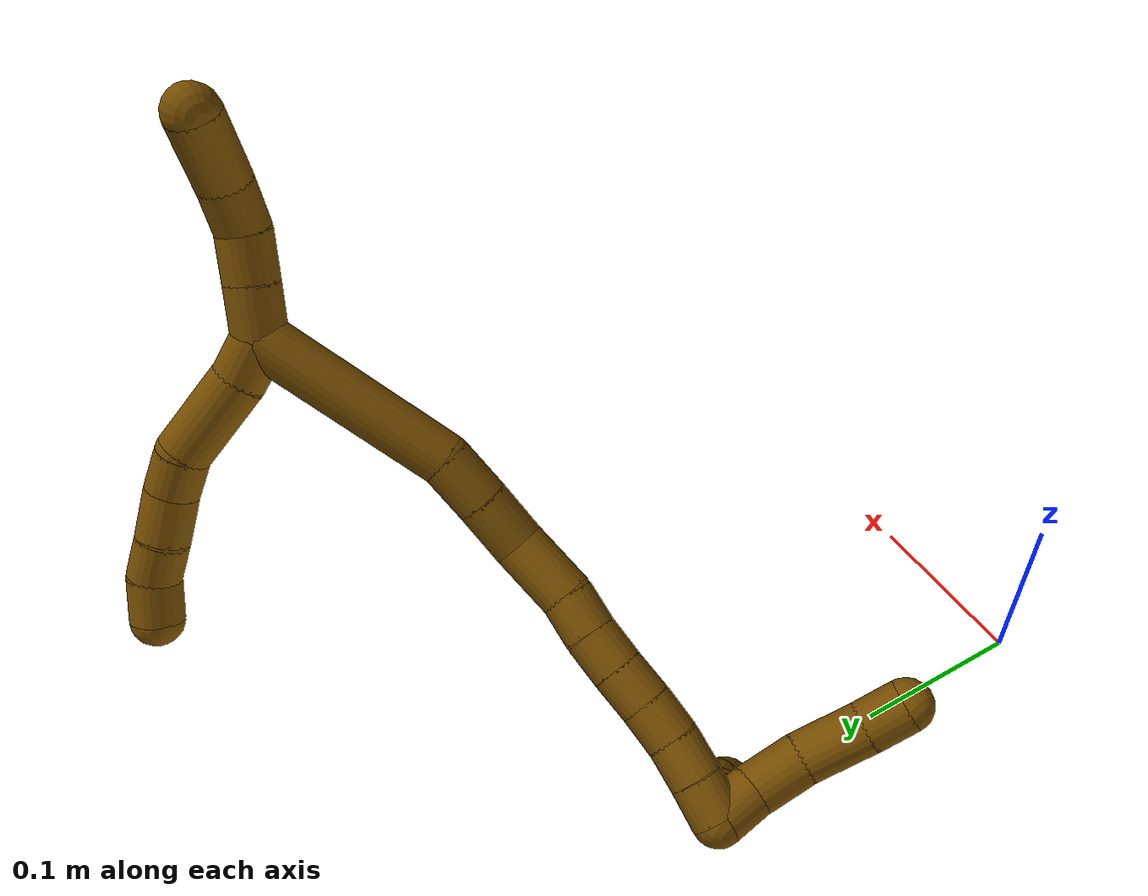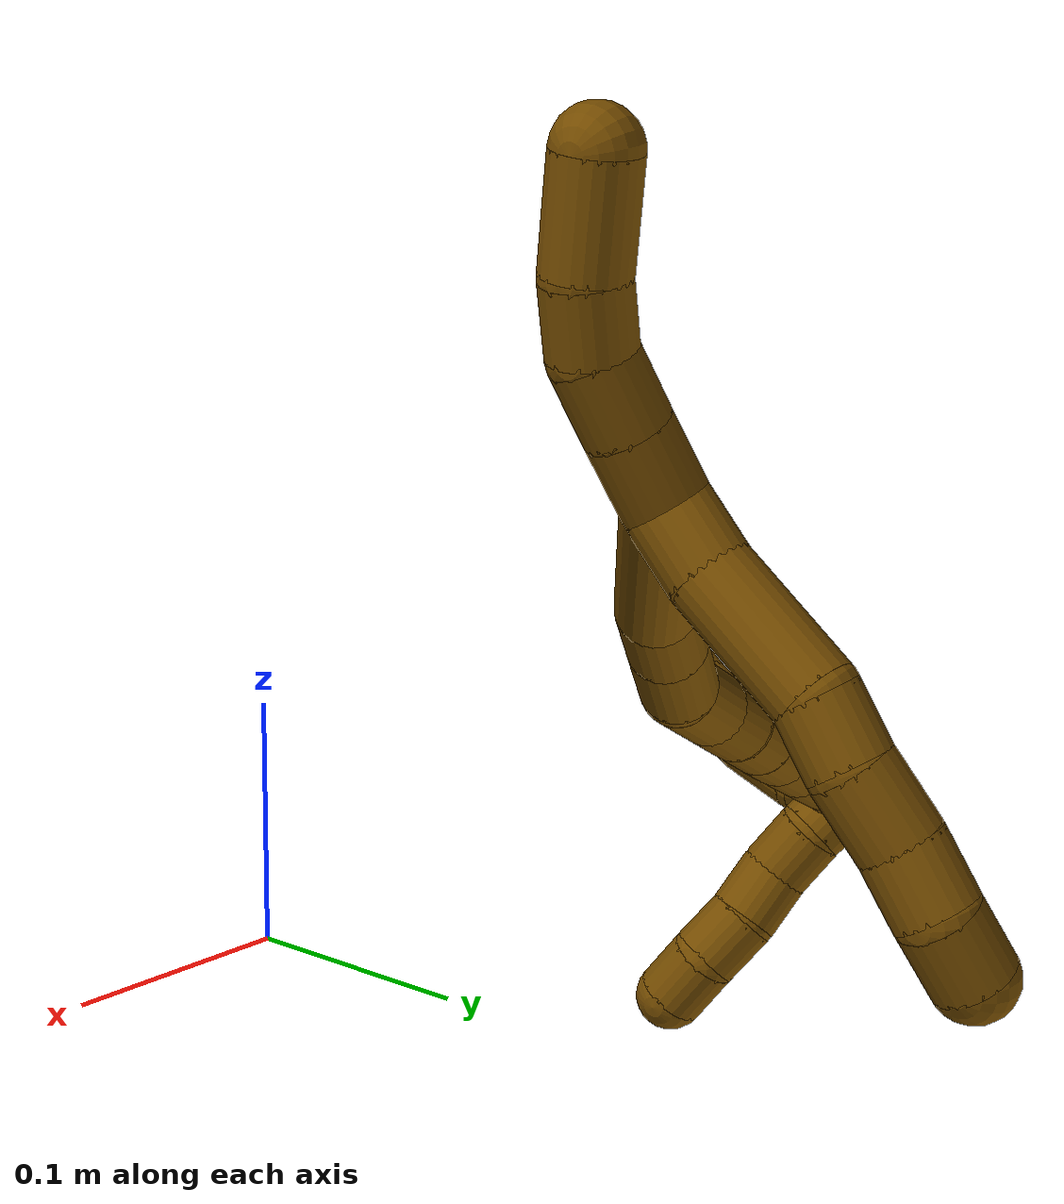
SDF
<sdf version="1.7">
 <world name="default">
  <model name="12">
   <static>0</static>
   <link name="12">
    <collision name="collision-cylinder-e_1_2_8">
     <pose>-0.006031 0.008974 0.000998 -1.46002 -0.58888 0.530022</pose>
     <geometry><cylinder><radius>0.0125</radius><length>0.021716</length></cylinder></geometry>
     <surface>
      <friction><ode><mu>1.16</mu><mu2>1.16</mu2><slip1>0</slip1><slip2>0</slip2></ode></friction>
      <contact><ode><kp>1e+06</kp><kd>1</kd><max_vel>0</max_vel><min_depth>0.001</min_depth></ode></contact>
     </surface>
    </collision>
    <visual name="visual-cylinder-e_1_2_8">
     <pose>-0.006031 0.008974 0.000998 -1.46002 -0.58888 0.530022</pose>
     <geometry><cylinder><radius>0.0125</radius><length>0.021716</length></cylinder></geometry>
     <material><ambient>0.466667 0.301961 0 1</ambient></material>
    </visual>
    <collision name="collision-cylinder-e_2_8_9">
     <pose>-0.026787 0.033162 0.00418 -1.42822 -0.76397 0.670084</pose>
     <geometry><cylinder><radius>0.0125</radius><length>0.042572</length></cylinder></geometry>
     <surface>
      <friction><ode><mu>1.16</mu><mu2>1.16</mu2><slip1>0</slip1><slip2>0</slip2></ode></friction>
      <contact><ode><kp>1e+06</kp><kd>1</kd><max_vel>0</max_vel><min_depth>0.001</min_depth></ode></contact>
     </surface>
    </collision>
    <visual name="visual-cylinder-e_2_8_9">
     <pose>-0.026787 0.033162 0.00418 -1.42822 -0.76397 0.670084</pose>
     <geometry><cylinder><radius>0.0125</radius><length>0.042572</length></cylinder></geometry>
     <material><ambient>0.466667 0.301961 0 1</ambient></material>
    </visual>
    <collision name="collision-cylinder-e_3_9_10">
     <pose>-0.045691 0.057557 0.006858 -1.51709 -0.426545 0.404852</pose>
     <geometry><cylinder><radius>0.0125</radius><length>0.020197</length></cylinder></geometry>
     <surface>
      <friction><ode><mu>1.16</mu><mu2>1.16</mu2><slip1>0</slip1><slip2>0</slip2></ode></friction>
      <contact><ode><kp>1e+06</kp><kd>1</kd><max_vel>0</max_vel><min_depth>0.001</min_depth></ode></contact>
     </surface>
    </collision>
    <visual name="visual-cylinder-e_3_9_10">
     <pose>-0.045691 0.057557 0.006858 -1.51709 -0.426545 0.404852</pose>
     <geometry><cylinder><radius>0.0125</radius><length>0.020197</length></cylinder></geometry>
     <material><ambient>0.466667 0.301961 0 1</ambient></material>
    </visual>
    <collision name="collision-cylinder-e_4_10_11">
     <pose>-0.054861 0.077448 0.005634 -1.72978 -0.431375 0.503155</pose>
     <geometry><cylinder><radius>0.0125</radius><length>0.023881</length></cylinder></geometry>
     <surface>
      <friction><ode><mu>1.16</mu><mu2>1.16</mu2><slip1>0</slip1><slip2>0</slip2></ode></friction>
      <contact><ode><kp>1e+06</kp><kd>1</kd><max_vel>0</max_vel><min_depth>0.001</min_depth></ode></contact>
     </surface>
    </collision>
    <visual name="visual-cylinder-e_4_10_11">
     <pose>-0.054861 0.077448 0.005634 -1.72978 -0.431375 0.503155</pose>
     <geometry><cylinder><radius>0.0125</radius><length>0.023881</length></cylinder></geometry>
     <material><ambient>0.466667 0.301961 0 1</ambient></material>
    </visual>
    <collision name="collision-cylinder-e_5_11_12">
     <pose>-0.063868 0.097487 0.003714 -1.59251 -0.406176 0.414839</pose>
     <geometry><cylinder><radius>0.0125</radius><length>0.020317</length></cylinder></geometry>
     <surface>
      <friction><ode><mu>1.16</mu><mu2>1.16</mu2><slip1>0</slip1><slip2>0</slip2></ode></friction>
      <contact><ode><kp>1e+06</kp><kd>1</kd><max_vel>0</max_vel><min_depth>0.001</min_depth></ode></contact>
     </surface>
    </collision>
    <visual name="visual-cylinder-e_5_11_12">
     <pose>-0.063868 0.097487 0.003714 -1.59251 -0.406176 0.414839</pose>
     <geometry><cylinder><radius>0.0125</radius><length>0.020317</length></cylinder></geometry>
     <material><ambient>0.466667 0.301961 0 1</ambient></material>
    </visual>
    <collision name="collision-cylinder-e_6_12_6">
     <pose>-0.070344 0.116681 0.000312 -1.88446 -0.233138 0.319437</pose>
     <geometry><cylinder><radius>0.0125</radius><length>0.021317</length></cylinder></geometry>
     <surface>
      <friction><ode><mu>1.16</mu><mu2>1.16</mu2><slip1>0</slip1><slip2>0</slip2></ode></friction>
      <contact><ode><kp>1e+06</kp><kd>1</kd><max_vel>0</max_vel><min_depth>0.001</min_depth></ode></contact>
     </surface>
    </collision>
    <visual name="visual-cylinder-e_6_12_6">
     <pose>-0.070344 0.116681 0.000312 -1.88446 -0.233138 0.319437</pose>
     <geometry><cylinder><radius>0.0125</radius><length>0.021317</length></cylinder></geometry>
     <material><ambient>0.466667 0.301961 0 1</ambient></material>
    </visual>
    <collision name="collision-cylinder-e_1_2_13">
     <pose>0.001666 -0.011207 0.003952 1.23175 0.139328 0.098683</pose>
     <geometry><cylinder><radius>0.0125</radius><length>0.023999</length></cylinder></geometry>
     <surface>
      <friction><ode><mu>1.16</mu><mu2>1.16</mu2><slip1>0</slip1><slip2>0</slip2></ode></friction>
      <contact><ode><kp>1e+06</kp><kd>1</kd><max_vel>0</max_vel><min_depth>0.001</min_depth></ode></contact>
     </surface>
    </collision>
    <visual name="visual-cylinder-e_1_2_13">
     <pose>0.001666 -0.011207 0.003952 1.23175 0.139328 0.098683</pose>
     <geometry><cylinder><radius>0.0125</radius><length>0.023999</length></cylinder></geometry>
     <material><ambient>0.466667 0.301961 0 1</ambient></material>
    </visual>
    <collision name="collision-cylinder-e_2_13_14">
     <pose>0.00478 -0.032964 0.011517 1.24087 0.12903 0.092264</pose>
     <geometry><cylinder><radius>0.0125</radius><length>0.02249</length></cylinder></geometry>
     <surface>
      <friction><ode><mu>1.16</mu><mu2>1.16</mu2><slip1>0</slip1><slip2>0</slip2></ode></friction>
      <contact><ode><kp>1e+06</kp><kd>1</kd><max_vel>0</max_vel><min_depth>0.001</min_depth></ode></contact>
     </surface>
    </collision>
    <visual name="visual-cylinder-e_2_13_14">
     <pose>0.00478 -0.032964 0.011517 1.24087 0.12903 0.092264</pose>
     <geometry><cylinder><radius>0.0125</radius><length>0.02249</length></cylinder></geometry>
     <material><ambient>0.466667 0.301961 0 1</ambient></material>
    </visual>
    <collision name="collision-cylinder-e_3_14_15">
     <pose>0.004575 -0.053805 0.016663 1.42295 -0.15739 -0.135757</pose>
     <geometry><cylinder><radius>0.0125</radius><length>0.021071</length></cylinder></geometry>
     <surface>
      <friction><ode><mu>1.16</mu><mu2>1.16</mu2><slip1>0</slip1><slip2>0</slip2></ode></friction>
      <contact><ode><kp>1e+06</kp><kd>1</kd><max_vel>0</max_vel><min_depth>0.001</min_depth></ode></contact>
     </surface>
    </collision>
    <visual name="visual-cylinder-e_3_14_15">
     <pose>0.004575 -0.053805 0.016663 1.42295 -0.15739 -0.135757</pose>
     <geometry><cylinder><radius>0.0125</radius><length>0.021071</length></cylinder></geometry>
     <material><ambient>0.466667 0.301961 0 1</ambient></material>
    </visual>
    <collision name="collision-cylinder-e_4_15_5">
     <pose>-0.001195 -0.079782 0.017858 1.59228 -0.25675 -0.262264</pose>
     <geometry><cylinder><radius>0.0125</radius><length>0.03244</length></cylinder></geometry>
     <surface>
      <friction><ode><mu>1.16</mu><mu2>1.16</mu2><slip1>0</slip1><slip2>0</slip2></ode></friction>
      <contact><ode><kp>1e+06</kp><kd>1</kd><max_vel>0</max_vel><min_depth>0.001</min_depth></ode></contact>
     </surface>
    </collision>
    <visual name="visual-cylinder-e_4_15_5">
     <pose>-0.001195 -0.079782 0.017858 1.59228 -0.25675 -0.262264</pose>
     <geometry><cylinder><radius>0.0125</radius><length>0.03244</length></cylinder></geometry>
     <material><ambient>0.466667 0.301961 0 1</ambient></material>
    </visual>
    <collision name="collision-cylinder-e_1_2_16">
     <pose>0.025702 0.024378 -0.032164 -2.49305 0.567071 -1.42841</pose>
     <geometry><cylinder><radius>0.0125</radius><length>0.095695</length></cylinder></geometry>
     <surface>
      <friction><ode><mu>1.16</mu><mu2>1.16</mu2><slip1>0</slip1><slip2>0</slip2></ode></friction>
      <contact><ode><kp>1e+06</kp><kd>1</kd><max_vel>0</max_vel><min_depth>0.001</min_depth></ode></contact>
     </surface>
    </collision>
    <visual name="visual-cylinder-e_1_2_16">
     <pose>0.025702 0.024378 -0.032164 -2.49305 0.567071 -1.42841</pose>
     <geometry><cylinder><radius>0.0125</radius><length>0.095695</length></cylinder></geometry>
     <material><ambient>0.466667 0.301961 0 1</ambient></material>
    </visual>
    <collision name="collision-cylinder-e_2_16_17">
     <pose>0.055756 0.057408 -0.072272 -2.31349 0.354784 -0.77468</pose>
     <geometry><cylinder><radius>0.0125</radius><length>0.025054</length></cylinder></geometry>
     <surface>
      <friction><ode><mu>1.16</mu><mu2>1.16</mu2><slip1>0</slip1><slip2>0</slip2></ode></friction>
      <contact><ode><kp>1e+06</kp><kd>1</kd><max_vel>0</max_vel><min_depth>0.001</min_depth></ode></contact>
     </surface>
    </collision>
    <visual name="visual-cylinder-e_2_16_17">
     <pose>0.055756 0.057408 -0.072272 -2.31349 0.354784 -0.77468</pose>
     <geometry><cylinder><radius>0.0125</radius><length>0.025054</length></cylinder></geometry>
     <material><ambient>0.466667 0.301961 0 1</ambient></material>
    </visual>
    <collision name="collision-cylinder-e_3_17_18">
     <pose>0.064497 0.075493 -0.088439 -2.28786 0.337434 -0.716665</pose>
     <geometry><cylinder><radius>0.0125</radius><length>0.026519</length></cylinder></geometry>
     <surface>
      <friction><ode><mu>1.16</mu><mu2>1.16</mu2><slip1>0</slip1><slip2>0</slip2></ode></friction>
      <contact><ode><kp>1e+06</kp><kd>1</kd><max_vel>0</max_vel><min_depth>0.001</min_depth></ode></contact>
     </surface>
    </collision>
    <visual name="visual-cylinder-e_3_17_18">
     <pose>0.064497 0.075493 -0.088439 -2.28786 0.337434 -0.716665</pose>
     <geometry><cylinder><radius>0.0125</radius><length>0.026519</length></cylinder></geometry>
     <material><ambient>0.466667 0.301961 0 1</ambient></material>
    </visual>
    <collision name="collision-cylinder-e_4_18_19">
     <pose>0.07269 0.092862 -0.110436 -2.61879 0.234819 -0.830528</pose>
     <geometry><cylinder><radius>0.0125</radius><length>0.032694</length></cylinder></geometry>
     <surface>
      <friction><ode><mu>1.16</mu><mu2>1.16</mu2><slip1>0</slip1><slip2>0</slip2></ode></friction>
      <contact><ode><kp>1e+06</kp><kd>1</kd><max_vel>0</max_vel><min_depth>0.001</min_depth></ode></contact>
     </surface>
    </collision>
    <visual name="visual-cylinder-e_4_18_19">
     <pose>0.07269 0.092862 -0.110436 -2.61879 0.234819 -0.830528</pose>
     <geometry><cylinder><radius>0.0125</radius><length>0.032694</length></cylinder></geometry>
     <material><ambient>0.466667 0.301961 0 1</ambient></material>
    </visual>
    <collision name="collision-cylinder-e_5_19_20">
     <pose>0.077075 0.106414 -0.132472 -2.54474 0.058143 -0.188506</pose>
     <geometry><cylinder><radius>0.0125</radius><length>0.02001</length></cylinder></geometry>
     <surface>
      <friction><ode><mu>1.16</mu><mu2>1.16</mu2><slip1>0</slip1><slip2>0</slip2></ode></friction>
      <contact><ode><kp>1e+06</kp><kd>1</kd><max_vel>0</max_vel><min_depth>0.001</min_depth></ode></contact>
     </surface>
    </collision>
    <visual name="visual-cylinder-e_5_19_20">
     <pose>0.077075 0.106414 -0.132472 -2.54474 0.058143 -0.188506</pose>
     <geometry><cylinder><radius>0.0125</radius><length>0.02001</length></cylinder></geometry>
     <material><ambient>0.466667 0.301961 0 1</ambient></material>
    </visual>
    <collision name="collision-cylinder-e_6_20_21">
     <pose>0.079157 0.117308 -0.149094 -2.57825 0.150589 -0.510045</pose>
     <geometry><cylinder><radius>0.0125</radius><length>0.020004</length></cylinder></geometry>
     <surface>
      <friction><ode><mu>1.16</mu><mu2>1.16</mu2><slip1>0</slip1><slip2>0</slip2></ode></friction>
      <contact><ode><kp>1e+06</kp><kd>1</kd><max_vel>0</max_vel><min_depth>0.001</min_depth></ode></contact>
     </surface>
    </collision>
    <visual name="visual-cylinder-e_6_20_21">
     <pose>0.079157 0.117308 -0.149094 -2.57825 0.150589 -0.510045</pose>
     <geometry><cylinder><radius>0.0125</radius><length>0.020004</length></cylinder></geometry>
     <material><ambient>0.466667 0.301961 0 1</ambient></material>
    </visual>
    <collision name="collision-cylinder-e_7_21_22">
     <pose>0.082463 0.127636 -0.165908 -2.60331 0.181355 -0.636851</pose>
     <geometry><cylinder><radius>0.0125</radius><length>0.020017</length></cylinder></geometry>
     <surface>
      <friction><ode><mu>1.16</mu><mu2>1.16</mu2><slip1>0</slip1><slip2>0</slip2></ode></friction>
      <contact><ode><kp>1e+06</kp><kd>1</kd><max_vel>0</max_vel><min_depth>0.001</min_depth></ode></contact>
     </surface>
    </collision>
    <visual name="visual-cylinder-e_7_21_22">
     <pose>0.082463 0.127636 -0.165908 -2.60331 0.181355 -0.636851</pose>
     <geometry><cylinder><radius>0.0125</radius><length>0.020017</length></cylinder></geometry>
     <material><ambient>0.466667 0.301961 0 1</ambient></material>
    </visual>
    <collision name="collision-cylinder-e_8_22_23">
     <pose>0.085582 0.137865 -0.182814 -2.59172 0.131723 -0.459392</pose>
     <geometry><cylinder><radius>0.0125</radius><length>0.020005</length></cylinder></geometry>
     <surface>
      <friction><ode><mu>1.16</mu><mu2>1.16</mu2><slip1>0</slip1><slip2>0</slip2></ode></friction>
      <contact><ode><kp>1e+06</kp><kd>1</kd><max_vel>0</max_vel><min_depth>0.001</min_depth></ode></contact>
     </surface>
    </collision>
    <visual name="visual-cylinder-e_8_22_23">
     <pose>0.085582 0.137865 -0.182814 -2.59172 0.131723 -0.459392</pose>
     <geometry><cylinder><radius>0.0125</radius><length>0.020005</length></cylinder></geometry>
     <material><ambient>0.466667 0.301961 0 1</ambient></material>
    </visual>
    <collision name="collision-cylinder-e_9_23_24">
     <pose>0.087106 0.148511 -0.19964 -2.56334 0.021002 -0.070578</pose>
     <geometry><cylinder><radius>0.0125</radius><length>0.02</length></cylinder></geometry>
     <surface>
      <friction><ode><mu>1.16</mu><mu2>1.16</mu2><slip1>0</slip1><slip2>0</slip2></ode></friction>
      <contact><ode><kp>1e+06</kp><kd>1</kd><max_vel>0</max_vel><min_depth>0.001</min_depth></ode></contact>
     </surface>
    </collision>
    <visual name="visual-cylinder-e_9_23_24">
     <pose>0.087106 0.148511 -0.19964 -2.56334 0.021002 -0.070578</pose>
     <geometry><cylinder><radius>0.0125</radius><length>0.02</length></cylinder></geometry>
     <material><ambient>0.466667 0.301961 0 1</ambient></material>
    </visual>
    <collision name="collision-cylinder-e_10_24_1">
     <pose>0.087401 0.159899 -0.216069 -2.50757 0.008589 -0.026179</pose>
     <geometry><cylinder><radius>0.0125</radius><length>0.020001</length></cylinder></geometry>
     <surface>
      <friction><ode><mu>1.16</mu><mu2>1.16</mu2><slip1>0</slip1><slip2>0</slip2></ode></friction>
      <contact><ode><kp>1e+06</kp><kd>1</kd><max_vel>0</max_vel><min_depth>0.001</min_depth></ode></contact>
     </surface>
    </collision>
    <visual name="visual-cylinder-e_10_24_1">
     <pose>0.087401 0.159899 -0.216069 -2.50757 0.008589 -0.026179</pose>
     <geometry><cylinder><radius>0.0125</radius><length>0.020001</length></cylinder></geometry>
     <material><ambient>0.466667 0.301961 0 1</ambient></material>
    </visual>
    <collision name="collision-cylinder-e_1_1_25">
     <pose>0.093091 0.171383 -0.217987 -0.735959 0.594784 -0.235231</pose>
     <geometry><cylinder><radius>0.0125</radius><length>0.02</length></cylinder></geometry>
     <surface>
      <friction><ode><mu>1.16</mu><mu2>1.16</mu2><slip1>0</slip1><slip2>0</slip2></ode></friction>
      <contact><ode><kp>1e+06</kp><kd>1</kd><max_vel>0</max_vel><min_depth>0.001</min_depth></ode></contact>
     </surface>
    </collision>
    <visual name="visual-cylinder-e_1_1_25">
     <pose>0.093091 0.171383 -0.217987 -0.735959 0.594784 -0.235231</pose>
     <geometry><cylinder><radius>0.0125</radius><length>0.02</length></cylinder></geometry>
     <material><ambient>0.466667 0.301961 0 1</ambient></material>
    </visual>
    <collision name="collision-cylinder-e_2_25_26">
     <pose>0.104895 0.183766 -0.207974 -1.0544 0.668869 -0.399199</pose>
     <geometry><cylinder><radius>0.0125</radius><length>0.02</length></cylinder></geometry>
     <surface>
      <friction><ode><mu>1.16</mu><mu2>1.16</mu2><slip1>0</slip1><slip2>0</slip2></ode></friction>
      <contact><ode><kp>1e+06</kp><kd>1</kd><max_vel>0</max_vel><min_depth>0.001</min_depth></ode></contact>
     </surface>
    </collision>
    <visual name="visual-cylinder-e_2_25_26">
     <pose>0.104895 0.183766 -0.207974 -1.0544 0.668869 -0.399199</pose>
     <geometry><cylinder><radius>0.0125</radius><length>0.02</length></cylinder></geometry>
     <material><ambient>0.466667 0.301961 0 1</ambient></material>
    </visual>
    <collision name="collision-cylinder-e_3_26_27">
     <pose>0.115092 0.197279 -0.197835 -0.818221 0.411038 -0.180278</pose>
     <geometry><cylinder><radius>0.0125</radius><length>0.02</length></cylinder></geometry>
     <surface>
      <friction><ode><mu>1.16</mu><mu2>1.16</mu2><slip1>0</slip1><slip2>0</slip2></ode></friction>
      <contact><ode><kp>1e+06</kp><kd>1</kd><max_vel>0</max_vel><min_depth>0.001</min_depth></ode></contact>
     </surface>
    </collision>
    <visual name="visual-cylinder-e_3_26_27">
     <pose>0.115092 0.197279 -0.197835 -0.818221 0.411038 -0.180278</pose>
     <geometry><cylinder><radius>0.0125</radius><length>0.02</length></cylinder></geometry>
     <material><ambient>0.466667 0.301961 0 1</ambient></material>
    </visual>
    <collision name="collision-cylinder-e_4_27_28">
     <pose>0.124703 0.210098 -0.186009 -0.833921 0.596288 -0.270566</pose>
     <geometry><cylinder><radius>0.0125</radius><length>0.02</length></cylinder></geometry>
     <surface>
      <friction><ode><mu>1.16</mu><mu2>1.16</mu2><slip1>0</slip1><slip2>0</slip2></ode></friction>
      <contact><ode><kp>1e+06</kp><kd>1</kd><max_vel>0</max_vel><min_depth>0.001</min_depth></ode></contact>
     </surface>
    </collision>
    <visual name="visual-cylinder-e_4_27_28">
     <pose>0.124703 0.210098 -0.186009 -0.833921 0.596288 -0.270566</pose>
     <geometry><cylinder><radius>0.0125</radius><length>0.02</length></cylinder></geometry>
     <material><ambient>0.466667 0.301961 0 1</ambient></material>
    </visual>
    <collision name="collision-cylinder-e_5_28_4">
     <pose>0.136988 0.223249 -0.177958 -1.23 0.730103 -0.527363</pose>
     <geometry><cylinder><radius>0.0125</radius><length>0.02</length></cylinder></geometry>
     <surface>
      <friction><ode><mu>1.16</mu><mu2>1.16</mu2><slip1>0</slip1><slip2>0</slip2></ode></friction>
      <contact><ode><kp>1e+06</kp><kd>1</kd><max_vel>0</max_vel><min_depth>0.001</min_depth></ode></contact>
     </surface>
    </collision>
    <visual name="visual-cylinder-e_5_28_4">
     <pose>0.136988 0.223249 -0.177958 -1.23 0.730103 -0.527363</pose>
     <geometry><cylinder><radius>0.0125</radius><length>0.02</length></cylinder></geometry>
     <material><ambient>0.466667 0.301961 0 1</ambient></material>
    </visual>
    <collision name="collision-cylinder-e_1_1_29">
     <pose>0.097517 0.163527 -0.223904 1.47446 1.34475 1.25186</pose>
     <geometry><cylinder><radius>0.0125</radius><length>0.020583</length></cylinder></geometry>
     <surface>
      <friction><ode><mu>1.16</mu><mu2>1.16</mu2><slip1>0</slip1><slip2>0</slip2></ode></friction>
      <contact><ode><kp>1e+06</kp><kd>1</kd><max_vel>0</max_vel><min_depth>0.001</min_depth></ode></contact>
     </surface>
    </collision>
    <visual name="visual-cylinder-e_1_1_29">
     <pose>0.097517 0.163527 -0.223904 1.47446 1.34475 1.25186</pose>
     <geometry><cylinder><radius>0.0125</radius><length>0.020583</length></cylinder></geometry>
     <material><ambient>0.466667 0.301961 0 1</ambient></material>
    </visual>
    <collision name="collision-cylinder-e_2_29_30">
     <pose>0.119417 0.155766 -0.226463 2.04142 1.09394 1.56379</pose>
     <geometry><cylinder><radius>0.0125</radius><length>0.02672</length></cylinder></geometry>
     <surface>
      <friction><ode><mu>1.16</mu><mu2>1.16</mu2><slip1>0</slip1><slip2>0</slip2></ode></friction>
      <contact><ode><kp>1e+06</kp><kd>1</kd><max_vel>0</max_vel><min_depth>0.001</min_depth></ode></contact>
     </surface>
    </collision>
    <visual name="visual-cylinder-e_2_29_30">
     <pose>0.119417 0.155766 -0.226463 2.04142 1.09394 1.56379</pose>
     <geometry><cylinder><radius>0.0125</radius><length>0.02672</length></cylinder></geometry>
     <material><ambient>0.466667 0.301961 0 1</ambient></material>
    </visual>
    <collision name="collision-cylinder-e_3_30_31">
     <pose>0.144126 0.142944 -0.235121 2.24494 0.938027 1.62289</pose>
     <geometry><cylinder><radius>0.0125</radius><length>0.031846</length></cylinder></geometry>
     <surface>
      <friction><ode><mu>1.16</mu><mu2>1.16</mu2><slip1>0</slip1><slip2>0</slip2></ode></friction>
      <contact><ode><kp>1e+06</kp><kd>1</kd><max_vel>0</max_vel><min_depth>0.001</min_depth></ode></contact>
     </surface>
    </collision>
    <visual name="visual-cylinder-e_3_30_31">
     <pose>0.144126 0.142944 -0.235121 2.24494 0.938027 1.62289</pose>
     <geometry><cylinder><radius>0.0125</radius><length>0.031846</length></cylinder></geometry>
     <material><ambient>0.466667 0.301961 0 1</ambient></material>
    </visual>
    <collision name="collision-cylinder-e_4_31_3">
     <pose>0.164912 0.129995 -0.244779 2.16509 0.866581 1.43309</pose>
     <geometry><cylinder><radius>0.0125</radius><length>0.020851</length></cylinder></geometry>
     <surface>
      <friction><ode><mu>1.16</mu><mu2>1.16</mu2><slip1>0</slip1><slip2>0</slip2></ode></friction>
      <contact><ode><kp>1e+06</kp><kd>1</kd><max_vel>0</max_vel><min_depth>0.001</min_depth></ode></contact>
     </surface>
    </collision>
    <visual name="visual-cylinder-e_4_31_3">
     <pose>0.164912 0.129995 -0.244779 2.16509 0.866581 1.43309</pose>
     <geometry><cylinder><radius>0.0125</radius><length>0.020851</length></cylinder></geometry>
     <material><ambient>0.466667 0.301961 0 1</ambient></material>
    </visual>
    <collision name="collision-sphere-3">
     <pose>0.172857 0.124403 -0.248558 0 -0 0</pose>
     <geometry><sphere><radius>0.0125</radius></sphere></geometry>
     <surface>
      <friction><ode><mu>1.16</mu><mu2>1.16</mu2><slip1>0</slip1><slip2>0</slip2></ode></friction>
      <contact><ode><kp>1e+06</kp><kd>1</kd><max_vel>0</max_vel><min_depth>0.001</min_depth></ode></contact>
     </surface>
    </collision>
    <visual name="visual-sphere-3">
     <pose>0.172857 0.124403 -0.248558 0 -0 0</pose>
     <geometry><sphere><radius>0.0125</radius></sphere></geometry>
     <material><ambient>0.466667 0.301961 0 1</ambient></material>
    </visual>
    <collision name="collision-sphere-31">
     <pose>0.156967 0.135587 -0.240999 0 -0 0</pose>
     <geometry><sphere><radius>0.0125</radius></sphere></geometry>
     <surface>
      <friction><ode><mu>1.16</mu><mu2>1.16</mu2><slip1>0</slip1><slip2>0</slip2></ode></friction>
      <contact><ode><kp>1e+06</kp><kd>1</kd><max_vel>0</max_vel><min_depth>0.001</min_depth></ode></contact>
     </surface>
    </collision>
    <visual name="visual-sphere-31">
     <pose>0.156967 0.135587 -0.240999 0 -0 0</pose>
     <geometry><sphere><radius>0.0125</radius></sphere></geometry>
     <material><ambient>0.466667 0.301961 0 1</ambient></material>
    </visual>
    <collision name="collision-sphere-30">
     <pose>0.131286 0.150301 -0.229243 0 -0 0</pose>
     <geometry><sphere><radius>0.0125</radius></sphere></geometry>
     <surface>
      <friction><ode><mu>1.16</mu><mu2>1.16</mu2><slip1>0</slip1><slip2>0</slip2></ode></friction>
      <contact><ode><kp>1e+06</kp><kd>1</kd><max_vel>0</max_vel><min_depth>0.001</min_depth></ode></contact>
     </surface>
    </collision>
    <visual name="visual-sphere-30">
     <pose>0.131286 0.150301 -0.229243 0 -0 0</pose>
     <geometry><sphere><radius>0.0125</radius></sphere></geometry>
     <material><ambient>0.466667 0.301961 0 1</ambient></material>
    </visual>
    <collision name="collision-sphere-29">
     <pose>0.107547 0.161231 -0.223682 0 -0 0</pose>
     <geometry><sphere><radius>0.0125</radius></sphere></geometry>
     <surface>
      <friction><ode><mu>1.16</mu><mu2>1.16</mu2><slip1>0</slip1><slip2>0</slip2></ode></friction>
      <contact><ode><kp>1e+06</kp><kd>1</kd><max_vel>0</max_vel><min_depth>0.001</min_depth></ode></contact>
     </surface>
    </collision>
    <visual name="visual-sphere-29">
     <pose>0.107547 0.161231 -0.223682 0 -0 0</pose>
     <geometry><sphere><radius>0.0125</radius></sphere></geometry>
     <material><ambient>0.466667 0.301961 0 1</ambient></material>
    </visual>
    <collision name="collision-sphere-4">
     <pose>0.143658 0.230271 -0.175468 0 -0 0</pose>
     <geometry><sphere><radius>0.0125</radius></sphere></geometry>
     <surface>
      <friction><ode><mu>1.16</mu><mu2>1.16</mu2><slip1>0</slip1><slip2>0</slip2></ode></friction>
      <contact><ode><kp>1e+06</kp><kd>1</kd><max_vel>0</max_vel><min_depth>0.001</min_depth></ode></contact>
     </surface>
    </collision>
    <visual name="visual-sphere-4">
     <pose>0.143658 0.230271 -0.175468 0 -0 0</pose>
     <geometry><sphere><radius>0.0125</radius></sphere></geometry>
     <material><ambient>0.466667 0.301961 0 1</ambient></material>
    </visual>
    <collision name="collision-sphere-28">
     <pose>0.130319 0.216226 -0.180449 0 -0 0</pose>
     <geometry><sphere><radius>0.0125</radius></sphere></geometry>
     <surface>
      <friction><ode><mu>1.16</mu><mu2>1.16</mu2><slip1>0</slip1><slip2>0</slip2></ode></friction>
      <contact><ode><kp>1e+06</kp><kd>1</kd><max_vel>0</max_vel><min_depth>0.001</min_depth></ode></contact>
     </surface>
    </collision>
    <visual name="visual-sphere-28">
     <pose>0.130319 0.216226 -0.180449 0 -0 0</pose>
     <geometry><sphere><radius>0.0125</radius></sphere></geometry>
     <material><ambient>0.466667 0.301961 0 1</ambient></material>
    </visual>
    <collision name="collision-sphere-27">
     <pose>0.119087 0.203971 -0.191569 0 -0 0</pose>
     <geometry><sphere><radius>0.0125</radius></sphere></geometry>
     <surface>
      <friction><ode><mu>1.16</mu><mu2>1.16</mu2><slip1>0</slip1><slip2>0</slip2></ode></friction>
      <contact><ode><kp>1e+06</kp><kd>1</kd><max_vel>0</max_vel><min_depth>0.001</min_depth></ode></contact>
     </surface>
    </collision>
    <visual name="visual-sphere-27">
     <pose>0.119087 0.203971 -0.191569 0 -0 0</pose>
     <geometry><sphere><radius>0.0125</radius></sphere></geometry>
     <material><ambient>0.466667 0.301961 0 1</ambient></material>
    </visual>
    <collision name="collision-sphere-26">
     <pose>0.111096 0.190588 -0.204101 0 -0 0</pose>
     <geometry><sphere><radius>0.0125</radius></sphere></geometry>
     <surface>
      <friction><ode><mu>1.16</mu><mu2>1.16</mu2><slip1>0</slip1><slip2>0</slip2></ode></friction>
      <contact><ode><kp>1e+06</kp><kd>1</kd><max_vel>0</max_vel><min_depth>0.001</min_depth></ode></contact>
     </surface>
    </collision>
    <visual name="visual-sphere-26">
     <pose>0.111096 0.190588 -0.204101 0 -0 0</pose>
     <geometry><sphere><radius>0.0125</radius></sphere></geometry>
     <material><ambient>0.466667 0.301961 0 1</ambient></material>
    </visual>
    <collision name="collision-sphere-25">
     <pose>0.098694 0.176944 -0.211848 0 -0 0</pose>
     <geometry><sphere><radius>0.0125</radius></sphere></geometry>
     <surface>
      <friction><ode><mu>1.16</mu><mu2>1.16</mu2><slip1>0</slip1><slip2>0</slip2></ode></friction>
      <contact><ode><kp>1e+06</kp><kd>1</kd><max_vel>0</max_vel><min_depth>0.001</min_depth></ode></contact>
     </surface>
    </collision>
    <visual name="visual-sphere-25">
     <pose>0.098694 0.176944 -0.211848 0 -0 0</pose>
     <geometry><sphere><radius>0.0125</radius></sphere></geometry>
     <material><ambient>0.466667 0.301961 0 1</ambient></material>
    </visual>
    <collision name="collision-sphere-1">
     <pose>0.087487 0.165823 -0.224126 0 -0 0</pose>
     <geometry><sphere><radius>0.0125</radius></sphere></geometry>
     <surface>
      <friction><ode><mu>1.16</mu><mu2>1.16</mu2><slip1>0</slip1><slip2>0</slip2></ode></friction>
      <contact><ode><kp>1e+06</kp><kd>1</kd><max_vel>0</max_vel><min_depth>0.001</min_depth></ode></contact>
     </surface>
    </collision>
    <visual name="visual-sphere-1">
     <pose>0.087487 0.165823 -0.224126 0 -0 0</pose>
     <geometry><sphere><radius>0.0125</radius></sphere></geometry>
     <material><ambient>0.466667 0.301961 0 1</ambient></material>
    </visual>
    <collision name="collision-sphere-24">
     <pose>0.087316 0.153975 -0.208013 0 -0 0</pose>
     <geometry><sphere><radius>0.0125</radius></sphere></geometry>
     <surface>
      <friction><ode><mu>1.16</mu><mu2>1.16</mu2><slip1>0</slip1><slip2>0</slip2></ode></friction>
      <contact><ode><kp>1e+06</kp><kd>1</kd><max_vel>0</max_vel><min_depth>0.001</min_depth></ode></contact>
     </surface>
    </collision>
    <visual name="visual-sphere-24">
     <pose>0.087316 0.153975 -0.208013 0 -0 0</pose>
     <geometry><sphere><radius>0.0125</radius></sphere></geometry>
     <material><ambient>0.466667 0.301961 0 1</ambient></material>
    </visual>
    <collision name="collision-sphere-23">
     <pose>0.086896 0.143046 -0.191268 0 -0 0</pose>
     <geometry><sphere><radius>0.0125</radius></sphere></geometry>
     <surface>
      <friction><ode><mu>1.16</mu><mu2>1.16</mu2><slip1>0</slip1><slip2>0</slip2></ode></friction>
      <contact><ode><kp>1e+06</kp><kd>1</kd><max_vel>0</max_vel><min_depth>0.001</min_depth></ode></contact>
     </surface>
    </collision>
    <visual name="visual-sphere-23">
     <pose>0.086896 0.143046 -0.191268 0 -0 0</pose>
     <geometry><sphere><radius>0.0125</radius></sphere></geometry>
     <material><ambient>0.466667 0.301961 0 1</ambient></material>
    </visual>
    <collision name="collision-sphere-22">
     <pose>0.084268 0.132683 -0.17436 0 -0 0</pose>
     <geometry><sphere><radius>0.0125</radius></sphere></geometry>
     <surface>
      <friction><ode><mu>1.16</mu><mu2>1.16</mu2><slip1>0</slip1><slip2>0</slip2></ode></friction>
      <contact><ode><kp>1e+06</kp><kd>1</kd><max_vel>0</max_vel><min_depth>0.001</min_depth></ode></contact>
     </surface>
    </collision>
    <visual name="visual-sphere-22">
     <pose>0.084268 0.132683 -0.17436 0 -0 0</pose>
     <geometry><sphere><radius>0.0125</radius></sphere></geometry>
     <material><ambient>0.466667 0.301961 0 1</ambient></material>
    </visual>
    <collision name="collision-sphere-21">
     <pose>0.080658 0.122589 -0.157455 0 -0 0</pose>
     <geometry><sphere><radius>0.0125</radius></sphere></geometry>
     <surface>
      <friction><ode><mu>1.16</mu><mu2>1.16</mu2><slip1>0</slip1><slip2>0</slip2></ode></friction>
      <contact><ode><kp>1e+06</kp><kd>1</kd><max_vel>0</max_vel><min_depth>0.001</min_depth></ode></contact>
     </surface>
    </collision>
    <visual name="visual-sphere-21">
     <pose>0.080658 0.122589 -0.157455 0 -0 0</pose>
     <geometry><sphere><radius>0.0125</radius></sphere></geometry>
     <material><ambient>0.466667 0.301961 0 1</ambient></material>
    </visual>
    <collision name="collision-sphere-12">
     <pose>-0.067881 0.106817 0.003512 0 -0 0</pose>
     <geometry><sphere><radius>0.0125</radius></sphere></geometry>
     <surface>
      <friction><ode><mu>1.16</mu><mu2>1.16</mu2><slip1>0</slip1><slip2>0</slip2></ode></friction>
      <contact><ode><kp>1e+06</kp><kd>1</kd><max_vel>0</max_vel><min_depth>0.001</min_depth></ode></contact>
     </surface>
    </collision>
    <visual name="visual-sphere-12">
     <pose>-0.067881 0.106817 0.003512 0 -0 0</pose>
     <geometry><sphere><radius>0.0125</radius></sphere></geometry>
     <material><ambient>0.466667 0.301961 0 1</ambient></material>
    </visual>
    <collision name="collision-sphere-11">
     <pose>-0.059854 0.088157 0.003917 0 -0 0</pose>
     <geometry><sphere><radius>0.0125</radius></sphere></geometry>
     <surface>
      <friction><ode><mu>1.16</mu><mu2>1.16</mu2><slip1>0</slip1><slip2>0</slip2></ode></friction>
      <contact><ode><kp>1e+06</kp><kd>1</kd><max_vel>0</max_vel><min_depth>0.001</min_depth></ode></contact>
     </surface>
    </collision>
    <visual name="visual-sphere-11">
     <pose>-0.059854 0.088157 0.003917 0 -0 0</pose>
     <geometry><sphere><radius>0.0125</radius></sphere></geometry>
     <material><ambient>0.466667 0.301961 0 1</ambient></material>
    </visual>
    <collision name="collision-sphere-10">
     <pose>-0.049869 0.066738 0.007351 0 -0 0</pose>
     <geometry><sphere><radius>0.0125</radius></sphere></geometry>
     <surface>
      <friction><ode><mu>1.16</mu><mu2>1.16</mu2><slip1>0</slip1><slip2>0</slip2></ode></friction>
      <contact><ode><kp>1e+06</kp><kd>1</kd><max_vel>0</max_vel><min_depth>0.001</min_depth></ode></contact>
     </surface>
    </collision>
    <visual name="visual-sphere-10">
     <pose>-0.049869 0.066738 0.007351 0 -0 0</pose>
     <geometry><sphere><radius>0.0125</radius></sphere></geometry>
     <material><ambient>0.466667 0.301961 0 1</ambient></material>
    </visual>
    <collision name="collision-sphere-9">
     <pose>-0.041513 0.048377 0.006364 0 -0 0</pose>
     <geometry><sphere><radius>0.0125</radius></sphere></geometry>
     <surface>
      <friction><ode><mu>1.16</mu><mu2>1.16</mu2><slip1>0</slip1><slip2>0</slip2></ode></friction>
      <contact><ode><kp>1e+06</kp><kd>1</kd><max_vel>0</max_vel><min_depth>0.001</min_depth></ode></contact>
     </surface>
    </collision>
    <visual name="visual-sphere-9">
     <pose>-0.041513 0.048377 0.006364 0 -0 0</pose>
     <geometry><sphere><radius>0.0125</radius></sphere></geometry>
     <material><ambient>0.466667 0.301961 0 1</ambient></material>
    </visual>
    <collision name="collision-sphere-2">
     <geometry><sphere><radius>0.0125</radius></sphere></geometry>
     <surface>
      <friction><ode><mu>1.16</mu><mu2>1.16</mu2><slip1>0</slip1><slip2>0</slip2></ode></friction>
      <contact><ode><kp>1e+06</kp><kd>1</kd><max_vel>0</max_vel><min_depth>0.001</min_depth></ode></contact>
     </surface>
    </collision>
    <visual name="visual-sphere-2">
     <geometry><sphere><radius>0.0125</radius></sphere></geometry>
     <material><ambient>0.466667 0.301961 0 1</ambient></material>
    </visual>
    <collision name="collision-sphere-19">
     <pose>0.076494 0.1008 -0.124211 0 -0 0</pose>
     <geometry><sphere><radius>0.0125</radius></sphere></geometry>
     <surface>
      <friction><ode><mu>1.16</mu><mu2>1.16</mu2><slip1>0</slip1><slip2>0</slip2></ode></friction>
      <contact><ode><kp>1e+06</kp><kd>1</kd><max_vel>0</max_vel><min_depth>0.001</min_depth></ode></contact>
     </surface>
    </collision>
    <visual name="visual-sphere-19">
     <pose>0.076494 0.1008 -0.124211 0 -0 0</pose>
     <geometry><sphere><radius>0.0125</radius></sphere></geometry>
     <material><ambient>0.466667 0.301961 0 1</ambient></material>
    </visual>
    <collision name="collision-sphere-8">
     <pose>-0.012062 0.017948 0.001996 0 -0 0</pose>
     <geometry><sphere><radius>0.0125</radius></sphere></geometry>
     <surface>
      <friction><ode><mu>1.16</mu><mu2>1.16</mu2><slip1>0</slip1><slip2>0</slip2></ode></friction>
      <contact><ode><kp>1e+06</kp><kd>1</kd><max_vel>0</max_vel><min_depth>0.001</min_depth></ode></contact>
     </surface>
    </collision>
    <visual name="visual-sphere-8">
     <pose>-0.012062 0.017948 0.001996 0 -0 0</pose>
     <geometry><sphere><radius>0.0125</radius></sphere></geometry>
     <material><ambient>0.466667 0.301961 0 1</ambient></material>
    </visual>
    <collision name="collision-sphere-6">
     <pose>-0.072806 0.126545 -0.002888 0 -0 0</pose>
     <geometry><sphere><radius>0.0125</radius></sphere></geometry>
     <surface>
      <friction><ode><mu>1.16</mu><mu2>1.16</mu2><slip1>0</slip1><slip2>0</slip2></ode></friction>
      <contact><ode><kp>1e+06</kp><kd>1</kd><max_vel>0</max_vel><min_depth>0.001</min_depth></ode></contact>
     </surface>
    </collision>
    <visual name="visual-sphere-6">
     <pose>-0.072806 0.126545 -0.002888 0 -0 0</pose>
     <geometry><sphere><radius>0.0125</radius></sphere></geometry>
     <material><ambient>0.466667 0.301961 0 1</ambient></material>
    </visual>
    <collision name="collision-sphere-13">
     <pose>0.003333 -0.022413 0.007904 0 -0 0</pose>
     <geometry><sphere><radius>0.0125</radius></sphere></geometry>
     <surface>
      <friction><ode><mu>1.16</mu><mu2>1.16</mu2><slip1>0</slip1><slip2>0</slip2></ode></friction>
      <contact><ode><kp>1e+06</kp><kd>1</kd><max_vel>0</max_vel><min_depth>0.001</min_depth></ode></contact>
     </surface>
    </collision>
    <visual name="visual-sphere-13">
     <pose>0.003333 -0.022413 0.007904 0 -0 0</pose>
     <geometry><sphere><radius>0.0125</radius></sphere></geometry>
     <material><ambient>0.466667 0.301961 0 1</ambient></material>
    </visual>
    <collision name="collision-sphere-14">
     <pose>0.006227 -0.043514 0.01513 0 -0 0</pose>
     <geometry><sphere><radius>0.0125</radius></sphere></geometry>
     <surface>
      <friction><ode><mu>1.16</mu><mu2>1.16</mu2><slip1>0</slip1><slip2>0</slip2></ode></friction>
      <contact><ode><kp>1e+06</kp><kd>1</kd><max_vel>0</max_vel><min_depth>0.001</min_depth></ode></contact>
     </surface>
    </collision>
    <visual name="visual-sphere-14">
     <pose>0.006227 -0.043514 0.01513 0 -0 0</pose>
     <geometry><sphere><radius>0.0125</radius></sphere></geometry>
     <material><ambient>0.466667 0.301961 0 1</ambient></material>
    </visual>
    <collision name="collision-sphere-15">
     <pose>0.002924 -0.064097 0.018196 0 -0 0</pose>
     <geometry><sphere><radius>0.0125</radius></sphere></geometry>
     <surface>
      <friction><ode><mu>1.16</mu><mu2>1.16</mu2><slip1>0</slip1><slip2>0</slip2></ode></friction>
      <contact><ode><kp>1e+06</kp><kd>1</kd><max_vel>0</max_vel><min_depth>0.001</min_depth></ode></contact>
     </surface>
    </collision>
    <visual name="visual-sphere-15">
     <pose>0.002924 -0.064097 0.018196 0 -0 0</pose>
     <geometry><sphere><radius>0.0125</radius></sphere></geometry>
     <material><ambient>0.466667 0.301961 0 1</ambient></material>
    </visual>
    <collision name="collision-sphere-5">
     <pose>-0.005314 -0.095467 0.017521 0 -0 0</pose>
     <geometry><sphere><radius>0.0125</radius></sphere></geometry>
     <surface>
      <friction><ode><mu>1.16</mu><mu2>1.16</mu2><slip1>0</slip1><slip2>0</slip2></ode></friction>
      <contact><ode><kp>1e+06</kp><kd>1</kd><max_vel>0</max_vel><min_depth>0.001</min_depth></ode></contact>
     </surface>
    </collision>
    <visual name="visual-sphere-5">
     <pose>-0.005314 -0.095467 0.017521 0 -0 0</pose>
     <geometry><sphere><radius>0.0125</radius></sphere></geometry>
     <material><ambient>0.466667 0.301961 0 1</ambient></material>
    </visual>
    <collision name="collision-sphere-16">
     <pose>0.051404 0.048755 -0.064328 0 -0 0</pose>
     <geometry><sphere><radius>0.0125</radius></sphere></geometry>
     <surface>
      <friction><ode><mu>1.16</mu><mu2>1.16</mu2><slip1>0</slip1><slip2>0</slip2></ode></friction>
      <contact><ode><kp>1e+06</kp><kd>1</kd><max_vel>0</max_vel><min_depth>0.001</min_depth></ode></contact>
     </surface>
    </collision>
    <visual name="visual-sphere-16">
     <pose>0.051404 0.048755 -0.064328 0 -0 0</pose>
     <geometry><sphere><radius>0.0125</radius></sphere></geometry>
     <material><ambient>0.466667 0.301961 0 1</ambient></material>
    </visual>
    <collision name="collision-sphere-17">
     <pose>0.060107 0.066062 -0.080216 0 -0 0</pose>
     <geometry><sphere><radius>0.0125</radius></sphere></geometry>
     <surface>
      <friction><ode><mu>1.16</mu><mu2>1.16</mu2><slip1>0</slip1><slip2>0</slip2></ode></friction>
      <contact><ode><kp>1e+06</kp><kd>1</kd><max_vel>0</max_vel><min_depth>0.001</min_depth></ode></contact>
     </surface>
    </collision>
    <visual name="visual-sphere-17">
     <pose>0.060107 0.066062 -0.080216 0 -0 0</pose>
     <geometry><sphere><radius>0.0125</radius></sphere></geometry>
     <material><ambient>0.466667 0.301961 0 1</ambient></material>
    </visual>
    <collision name="collision-sphere-18">
     <pose>0.068887 0.084923 -0.096661 0 -0 0</pose>
     <geometry><sphere><radius>0.0125</radius></sphere></geometry>
     <surface>
      <friction><ode><mu>1.16</mu><mu2>1.16</mu2><slip1>0</slip1><slip2>0</slip2></ode></friction>
      <contact><ode><kp>1e+06</kp><kd>1</kd><max_vel>0</max_vel><min_depth>0.001</min_depth></ode></contact>
     </surface>
    </collision>
    <visual name="visual-sphere-18">
     <pose>0.068887 0.084923 -0.096661 0 -0 0</pose>
     <geometry><sphere><radius>0.0125</radius></sphere></geometry>
     <material><ambient>0.466667 0.301961 0 1</ambient></material>
    </visual>
    <collision name="collision-sphere-20">
     <pose>0.077657 0.112027 -0.140733 0 -0 0</pose>
     <geometry><sphere><radius>0.0125</radius></sphere></geometry>
     <surface>
      <friction><ode><mu>1.16</mu><mu2>1.16</mu2><slip1>0</slip1><slip2>0</slip2></ode></friction>
      <contact><ode><kp>1e+06</kp><kd>1</kd><max_vel>0</max_vel><min_depth>0.001</min_depth></ode></contact>
     </surface>
    </collision>
    <visual name="visual-sphere-20">
     <pose>0.077657 0.112027 -0.140733 0 -0 0</pose>
     <geometry><sphere><radius>0.0125</radius></sphere></geometry>
     <material><ambient>0.466667 0.301961 0 1</ambient></material>
    </visual>
    <inertial>
     <pose>0.04873 0.084836 -0.09725 0 -0 0</pose>
     <mass>0.75</mass>
     <inertia>
      <ixx>-2e-06</ixx>
      <ixy>0</ixy>
      <ixz>0</ixz>
      <iyy>-2.2e-05</iyy>
      <iyz>0</iyz>
      <izz>-0.000116</izz>
     </inertia>
    </inertial>
   </link>
   <pose>0.1814 0.342805 0.255802 -1.66955 0.115199 -1.473</pose>
  </model>
 </world>
</sdf>
